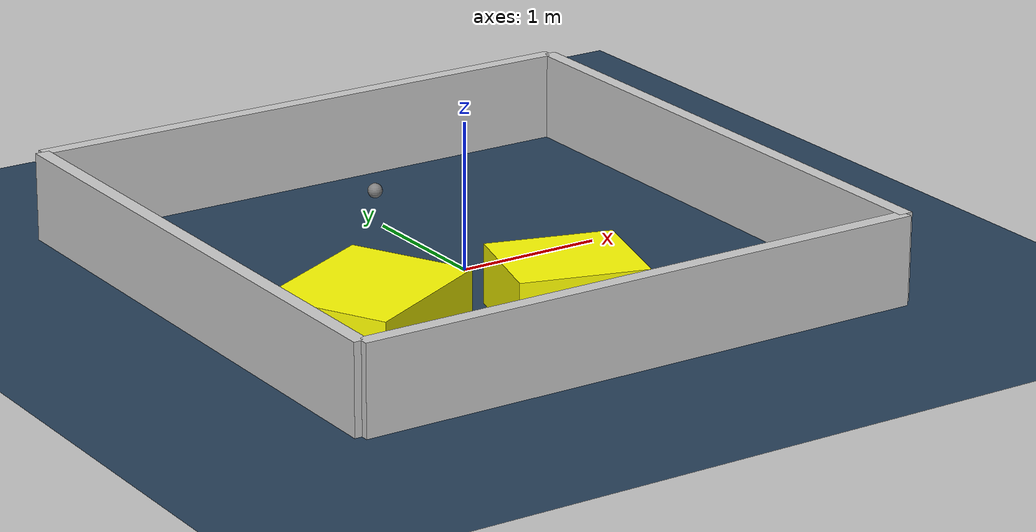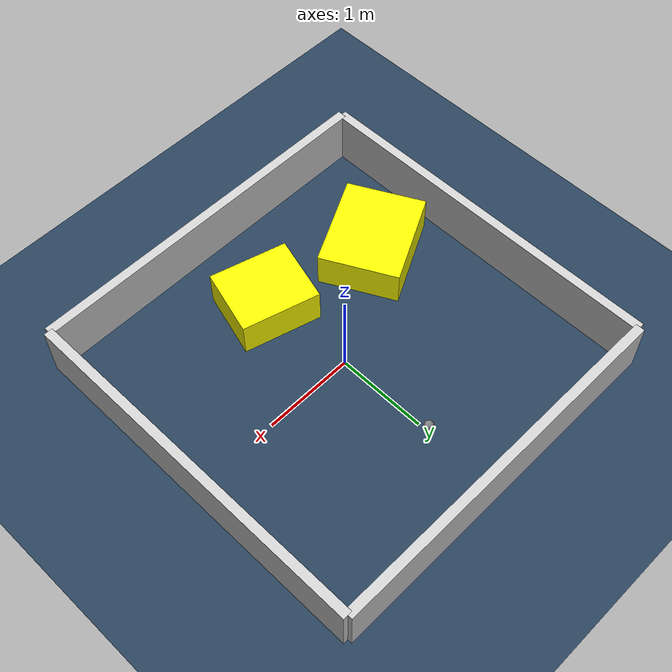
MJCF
<?xml version="1.0" ?>
<mujoco model="generated_environment">
  <option timestep="0.01" integrator="RK4" cone="elliptic"/>
  <default>
    <geom density="1"/>
  </default>
  <asset>
    <texture builtin="gradient" height="3072" rgb1="0.3 0.5 0.7" rgb2="0 0 0" type="skybox" width="512"/>
    <texture builtin="checker" height="300" mark="edge" markrgb="0.8 0.8 0.8" name="groundplane" rgb1="0.2 0.3 0.4" rgb2="0.1 0.2 0.3" type="2d" width="300"/>
    <material name="groundplane" reflectance="0.2" texrepeat="5 5" texture="groundplane" texuniform="true"/>
    <material name="robot" rgba="0.0 1.0 0.0 1"/>
  </asset>
  <worldbody>
    <light dir="0 0 -1" directional="true" pos="0 0 1.5"/>
    <geom condim="4" friction="1.0 0.005 0.001" material="groundplane" name="floor" size="0 0 0.05" type="plane"/>
    <body name="walls">
      <geom name="wall_1" condim="4" pos="-2.0 0.0 0.3" rgba="0.800000011920929 0.800000011920929 0.800000011920929 1.0" size="0.05 2.0 0.3" type="box"/>
      <geom name="wall_2" condim="4" pos="2.0 0.0 0.3" rgba="0.800000011920929 0.800000011920929 0.800000011920929 1.0" size="0.05 2.0 0.3" type="box"/>
      <geom name="wall_3" condim="4" pos="0.0 -2.0 0.3" rgba="0.800000011920929 0.800000011920929 0.800000011920929 1.0" size="2.0 0.05 0.3" type="box"/>
      <geom name="wall_4" condim="4" pos="0.0 2.0 0.3" rgba="0.800000011920929 0.800000011920929 0.800000011920929 1.0" size="2.0 0.05 0.3" type="box"/>
    </body>
    <body name="robot">
      <joint name="joint_x" type="slide" pos="0 0 0" axis="1 0 0"/>
      <joint name="joint_y" type="slide" pos="0 0 0" axis="0 1 0"/>
      <geom name="robot" type="sphere" pos="0.028128754745029516 1.144960867767479 0.2" size="0.05" mass="5." friction="1.0 0.005 0.0001" condim="4"/>
      <site name="sensor_ball"/>
    </body>
    <body name="obstacle_1_movable">
      <geom name="obstacle_1_movable" condim="4" pos="-1.1924700252724698 -0.7642154867433872 0.2" euler="0 0 117.43670416030238" friction="1.0 0.005 0.001" rgba="1 1 0 1" size="0.4336787837721481 0.5242244375789874 0.2" type="box" mass="0.1"/>
      <joint type="free"/>
    </body>
    <body name="obstacle_2_movable">
      <geom name="obstacle_2_movable" condim="4" pos="0.08689124198745324 -1.0405365050965 0.2" euler="0 0 164.18728258606376" friction="1.0 0.005 0.001" rgba="1 1 0 1" size="0.4288384812620185 0.3708647942625303 0.2" type="box" mass="0.1"/>
      <joint type="free"/>
    </body>
  </worldbody>
  <actuator>
    <motor name="actuator_x" joint="joint_x" gear="1" ctrlrange="-1 1"/>
    <motor name="actuator_y" joint="joint_y" gear="1" ctrlrange="-1 1"/>
  </actuator>
</mujoco>
